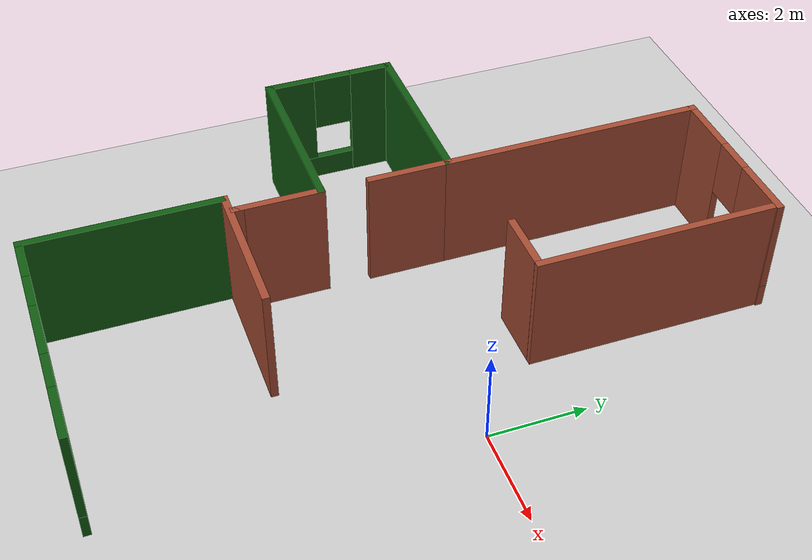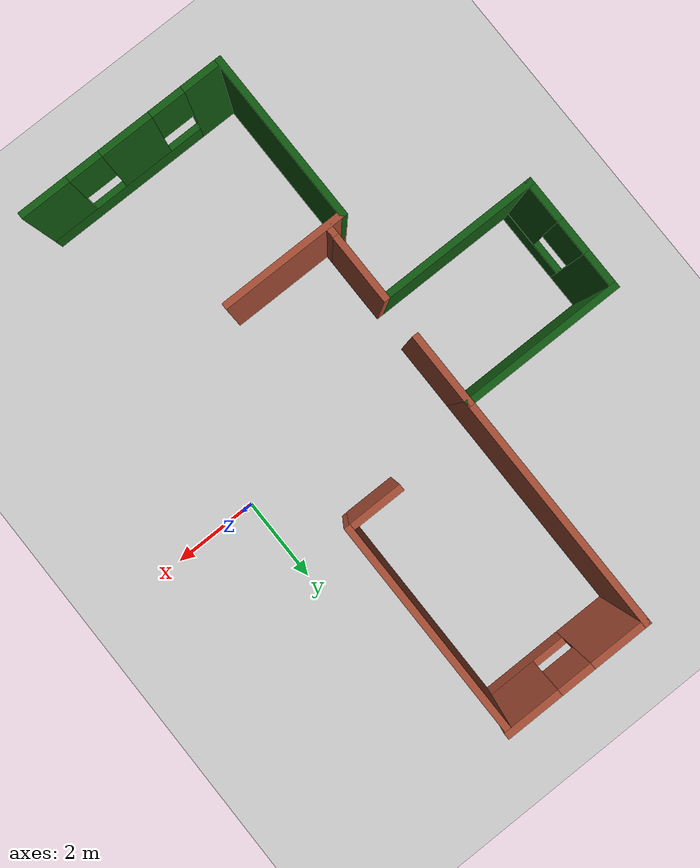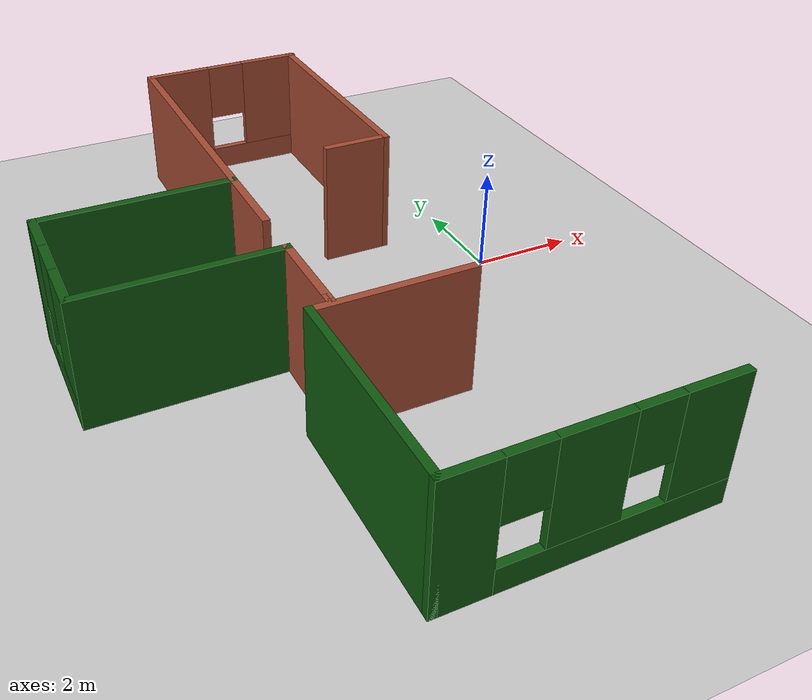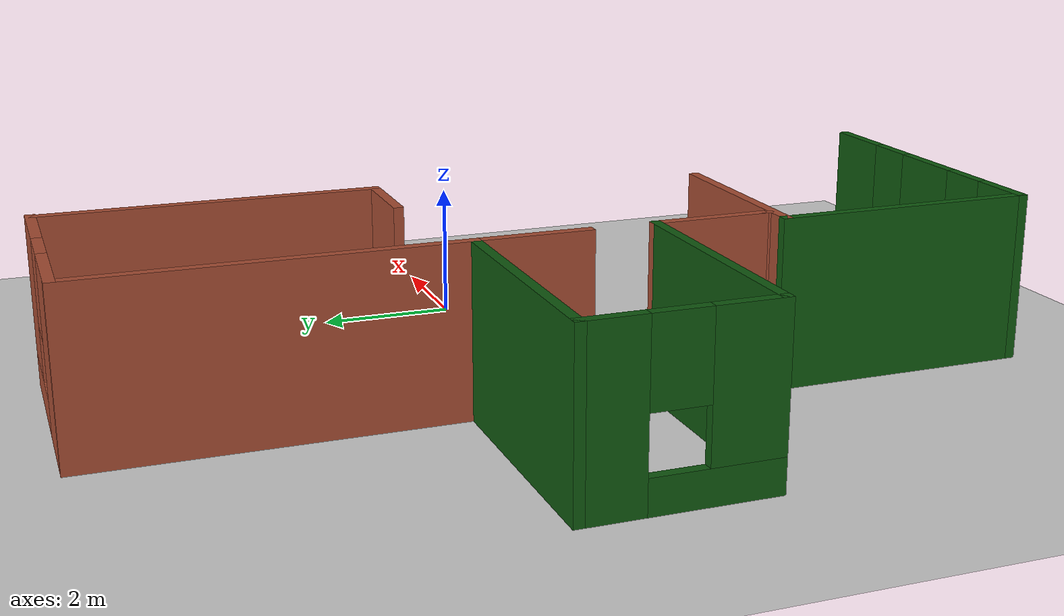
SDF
<sdf version="1.6">
 <world name="default">
  <model name="ground_plane">
   <static>1</static>
   <link name="link">
    <collision name="collision">
     <geometry><plane><normal>0 0 1</normal><size>100 100</size></plane></geometry>
     <surface>
      <contact><collide_bitmask>65535</collide_bitmask></contact>
      <friction><ode><mu>100</mu><mu2>50</mu2></ode></friction>
     </surface>
    </collision>
    <visual name="visual">
     <cast_shadows>0</cast_shadows>
     <geometry><plane><normal>0 0 1</normal><size>100 100</size></plane></geometry>
     <material>
      <script><uri>file://media/materials/scripts/gazebo.material</uri><name>Gazebo/Grey</name></script>
     </material>
    </visual>
   </link>
  </model>
  <model name="apartment">
   <link name="Wall_0">
    <pose>-2.91418 -6.79442 0 0 -0 0</pose>
    <visual name="Wall_0_Visual_0">
     <pose>-1.99956 0 1.25 0 -0 0</pose>
     <geometry><box><size>1.00087 0.15 2.5</size></box></geometry>
     <material>
      <script><uri>file://media/materials/scripts/gazebo.material</uri><name>Gazebo/Grey</name></script>
      <ambient>0.0627451 0.352941 0.0627451 1</ambient>
     </material>
     <meta><layer>0</layer></meta>
    </visual>
    <visual name="Wall_0_Visual_1">
     <pose>0.500436 0 0.25 0 -0 0</pose>
     <geometry><box><size>3.99913 0.15 0.5</size></box></geometry>
     <material>
      <script><uri>file://media/materials/scripts/gazebo.material</uri><name>Gazebo/Grey</name></script>
      <ambient>0.0627451 0.352941 0.0627451 1</ambient>
     </material>
     <meta><layer>0</layer></meta>
    </visual>
    <visual name="Wall_0_Visual_2">
     <pose>-0.080142 0 1.5 0 -0 0</pose>
     <geometry><box><size>1.23797 0.15 2</size></box></geometry>
     <material>
      <script><uri>file://media/materials/scripts/gazebo.material</uri><name>Gazebo/Grey</name></script>
      <ambient>0.0627451 0.352941 0.0627451 1</ambient>
     </material>
     <meta><layer>0</layer></meta>
    </visual>
    <visual name="Wall_0_Visual_3">
     <pose>1.91942 0 1.5 0 -0 0</pose>
     <geometry><box><size>1.16116 0.15 2</size></box></geometry>
     <material>
      <script><uri>file://media/materials/scripts/gazebo.material</uri><name>Gazebo/Grey</name></script>
      <ambient>0.0627451 0.352941 0.0627451 1</ambient>
     </material>
     <meta><layer>0</layer></meta>
    </visual>
    <visual name="Wall_0_Visual_4">
     <pose>-1.09913 0 1.9 0 -0 0</pose>
     <geometry><box><size>0.8 0.15 1.2</size></box></geometry>
     <material>
      <script><uri>file://media/materials/scripts/gazebo.material</uri><name>Gazebo/Grey</name></script>
      <ambient>0.0627451 0.352941 0.0627451 1</ambient>
     </material>
     <meta><layer>0</layer></meta>
    </visual>
    <visual name="Wall_0_Visual_5">
     <pose>0.938844 0 1.9 0 -0 0</pose>
     <geometry><box><size>0.8 0.15 1.2</size></box></geometry>
     <material>
      <script><uri>file://media/materials/scripts/gazebo.material</uri><name>Gazebo/Grey</name></script>
      <ambient>0.0627451 0.352941 0.0627451 1</ambient>
     </material>
     <meta><layer>0</layer></meta>
    </visual>
    <collision name="Wall_0_Collision_0">
     <pose>-1.99956 0 1.25 0 -0 0</pose>
     <geometry><box><size>1.00087 0.15 2.5</size></box></geometry>
     <surface>
      <friction>
       <ode><mu>1</mu><mu2>1</mu2><fdir1>0 0 0</fdir1><slip1>0</slip1><slip2>0</slip2></ode>
       <torsional>
        <coefficient>1</coefficient>
        <patch_radius>0</patch_radius>
        <surface_radius>0</surface_radius>
        <use_patch_radius>1</use_patch_radius>
        <ode><slip>0</slip></ode>
       </torsional>
      </friction>
      <bounce><restitution_coefficient>0</restitution_coefficient><threshold>1e+06</threshold></bounce>
      <contact>
       <collide_without_contact>0</collide_without_contact>
       <collide_without_contact_bitmask>1</collide_without_contact_bitmask>
       <collide_bitmask>1</collide_bitmask>
       <ode>
        <soft_cfm>0</soft_cfm>
        <soft_erp>0.2</soft_erp>
        <kp>1e+13</kp>
        <kd>1</kd>
        <max_vel>0.01</max_vel>
        <min_depth>0</min_depth>
       </ode>
       <bullet>
        <split_impulse>1</split_impulse>
        <split_impulse_penetration_threshold>-0.01</split_impulse_penetration_threshold>
        <soft_cfm>0</soft_cfm>
        <soft_erp>0.2</soft_erp>
        <kp>1e+13</kp>
        <kd>1</kd>
       </bullet>
      </contact>
     </surface>
    </collision>
    <collision name="Wall_0_Collision_1">
     <pose>0.500436 0 0.25 0 -0 0</pose>
     <geometry><box><size>3.99913 0.15 0.5</size></box></geometry>
     <surface>
      <friction>
       <ode><mu>1</mu><mu2>1</mu2><fdir1>0 0 0</fdir1><slip1>0</slip1><slip2>0</slip2></ode>
       <torsional>
        <coefficient>1</coefficient>
        <patch_radius>0</patch_radius>
        <surface_radius>0</surface_radius>
        <use_patch_radius>1</use_patch_radius>
        <ode><slip>0</slip></ode>
       </torsional>
      </friction>
      <bounce><restitution_coefficient>0</restitution_coefficient><threshold>1e+06</threshold></bounce>
      <contact>
       <collide_without_contact>0</collide_without_contact>
       <collide_without_contact_bitmask>1</collide_without_contact_bitmask>
       <collide_bitmask>1</collide_bitmask>
       <ode>
        <soft_cfm>0</soft_cfm>
        <soft_erp>0.2</soft_erp>
        <kp>1e+13</kp>
        <kd>1</kd>
        <max_vel>0.01</max_vel>
        <min_depth>0</min_depth>
       </ode>
       <bullet>
        <split_impulse>1</split_impulse>
        <split_impulse_penetration_threshold>-0.01</split_impulse_penetration_threshold>
        <soft_cfm>0</soft_cfm>
        <soft_erp>0.2</soft_erp>
        <kp>1e+13</kp>
        <kd>1</kd>
       </bullet>
      </contact>
     </surface>
    </collision>
    <collision name="Wall_0_Collision_2">
     <pose>-0.080142 0 1.5 0 -0 0</pose>
     <geometry><box><size>1.23797 0.15 2</size></box></geometry>
     <surface>
      <friction>
       <ode><mu>1</mu><mu2>1</mu2><fdir1>0 0 0</fdir1><slip1>0</slip1><slip2>0</slip2></ode>
       <torsional>
        <coefficient>1</coefficient>
        <patch_radius>0</patch_radius>
        <surface_radius>0</surface_radius>
        <use_patch_radius>1</use_patch_radius>
        <ode><slip>0</slip></ode>
       </torsional>
      </friction>
      <bounce><restitution_coefficient>0</restitution_coefficient><threshold>1e+06</threshold></bounce>
      <contact>
       <collide_without_contact>0</collide_without_contact>
       <collide_without_contact_bitmask>1</collide_without_contact_bitmask>
       <collide_bitmask>1</collide_bitmask>
       <ode>
        <soft_cfm>0</soft_cfm>
        <soft_erp>0.2</soft_erp>
        <kp>1e+13</kp>
        <kd>1</kd>
        <max_vel>0.01</max_vel>
        <min_depth>0</min_depth>
       </ode>
       <bullet>
        <split_impulse>1</split_impulse>
        <split_impulse_penetration_threshold>-0.01</split_impulse_penetration_threshold>
        <soft_cfm>0</soft_cfm>
        <soft_erp>0.2</soft_erp>
        <kp>1e+13</kp>
        <kd>1</kd>
       </bullet>
      </contact>
     </surface>
    </collision>
    <collision name="Wall_0_Collision_3">
     <pose>1.91942 0 1.5 0 -0 0</pose>
     <geometry><box><size>1.16116 0.15 2</size></box></geometry>
     <surface>
      <friction>
       <ode><mu>1</mu><mu2>1</mu2><fdir1>0 0 0</fdir1><slip1>0</slip1><slip2>0</slip2></ode>
       <torsional>
        <coefficient>1</coefficient>
        <patch_radius>0</patch_radius>
        <surface_radius>0</surface_radius>
        <use_patch_radius>1</use_patch_radius>
        <ode><slip>0</slip></ode>
       </torsional>
      </friction>
      <bounce><restitution_coefficient>0</restitution_coefficient><threshold>1e+06</threshold></bounce>
      <contact>
       <collide_without_contact>0</collide_without_contact>
       <collide_without_contact_bitmask>1</collide_without_contact_bitmask>
       <collide_bitmask>1</collide_bitmask>
       <ode>
        <soft_cfm>0</soft_cfm>
        <soft_erp>0.2</soft_erp>
        <kp>1e+13</kp>
        <kd>1</kd>
        <max_vel>0.01</max_vel>
        <min_depth>0</min_depth>
       </ode>
       <bullet>
        <split_impulse>1</split_impulse>
        <split_impulse_penetration_threshold>-0.01</split_impulse_penetration_threshold>
        <soft_cfm>0</soft_cfm>
        <soft_erp>0.2</soft_erp>
        <kp>1e+13</kp>
        <kd>1</kd>
       </bullet>
      </contact>
     </surface>
    </collision>
    <collision name="Wall_0_Collision_4">
     <pose>-1.09913 0 1.9 0 -0 0</pose>
     <geometry><box><size>0.8 0.15 1.2</size></box></geometry>
     <surface>
      <friction>
       <ode><mu>1</mu><mu2>1</mu2><fdir1>0 0 0</fdir1><slip1>0</slip1><slip2>0</slip2></ode>
       <torsional>
        <coefficient>1</coefficient>
        <patch_radius>0</patch_radius>
        <surface_radius>0</surface_radius>
        <use_patch_radius>1</use_patch_radius>
        <ode><slip>0</slip></ode>
       </torsional>
      </friction>
      <bounce><restitution_coefficient>0</restitution_coefficient><threshold>1e+06</threshold></bounce>
      <contact>
       <collide_without_contact>0</collide_without_contact>
       <collide_without_contact_bitmask>1</collide_without_contact_bitmask>
       <collide_bitmask>1</collide_bitmask>
       <ode>
        <soft_cfm>0</soft_cfm>
        <soft_erp>0.2</soft_erp>
        <kp>1e+13</kp>
        <kd>1</kd>
        <max_vel>0.01</max_vel>
        <min_depth>0</min_depth>
       </ode>
       <bullet>
        <split_impulse>1</split_impulse>
        <split_impulse_penetration_threshold>-0.01</split_impulse_penetration_threshold>
        <soft_cfm>0</soft_cfm>
        <soft_erp>0.2</soft_erp>
        <kp>1e+13</kp>
        <kd>1</kd>
       </bullet>
      </contact>
     </surface>
    </collision>
    <collision name="Wall_0_Collision_5">
     <pose>0.938844 0 1.9 0 -0 0</pose>
     <geometry><box><size>0.8 0.15 1.2</size></box></geometry>
     <surface>
      <friction>
       <ode><mu>1</mu><mu2>1</mu2><fdir1>0 0 0</fdir1><slip1>0</slip1><slip2>0</slip2></ode>
       <torsional>
        <coefficient>1</coefficient>
        <patch_radius>0</patch_radius>
        <surface_radius>0</surface_radius>
        <use_patch_radius>1</use_patch_radius>
        <ode><slip>0</slip></ode>
       </torsional>
      </friction>
      <bounce><restitution_coefficient>0</restitution_coefficient><threshold>1e+06</threshold></bounce>
      <contact>
       <collide_without_contact>0</collide_without_contact>
       <collide_without_contact_bitmask>1</collide_without_contact_bitmask>
       <collide_bitmask>1</collide_bitmask>
       <ode>
        <soft_cfm>0</soft_cfm>
        <soft_erp>0.2</soft_erp>
        <kp>1e+13</kp>
        <kd>1</kd>
        <max_vel>0.01</max_vel>
        <min_depth>0</min_depth>
       </ode>
       <bullet>
        <split_impulse>1</split_impulse>
        <split_impulse_penetration_threshold>-0.01</split_impulse_penetration_threshold>
        <soft_cfm>0</soft_cfm>
        <soft_erp>0.2</soft_erp>
        <kp>1e+13</kp>
        <kd>1</kd>
       </bullet>
      </contact>
     </surface>
    </collision>
   </link>
   <link name="Wall_20">
    <pose>-1.63918 4.33059 0 0 -0 1.5708</pose>
    <visual name="Wall_20_Visual">
     <pose>0 0 1.25 0 -0 0</pose>
     <geometry><box><size>5 0.15 2.5</size></box></geometry>
     <material>
      <script><uri>file://media/materials/scripts/gazebo.material</uri><name>Gazebo/Bricks</name></script>
      <ambient>1 1 1 1</ambient>
     </material>
     <meta><layer>0</layer></meta>
    </visual>
    <collision name="Wall_20_Collision">
     <pose>0 0 1.25 0 -0 0</pose>
     <geometry><box><size>5 0.15 2.5</size></box></geometry>
     <surface>
      <friction>
       <ode><mu>1</mu><mu2>1</mu2><fdir1>0 0 0</fdir1><slip1>0</slip1><slip2>0</slip2></ode>
       <torsional>
        <coefficient>1</coefficient>
        <patch_radius>0</patch_radius>
        <surface_radius>0</surface_radius>
        <use_patch_radius>1</use_patch_radius>
        <ode><slip>0</slip></ode>
       </torsional>
      </friction>
      <bounce><restitution_coefficient>0</restitution_coefficient><threshold>1e+06</threshold></bounce>
      <contact>
       <collide_without_contact>0</collide_without_contact>
       <collide_without_contact_bitmask>1</collide_without_contact_bitmask>
       <collide_bitmask>1</collide_bitmask>
       <ode>
        <soft_cfm>0</soft_cfm>
        <soft_erp>0.2</soft_erp>
        <kp>1e+13</kp>
        <kd>1</kd>
        <max_vel>0.01</max_vel>
        <min_depth>0</min_depth>
       </ode>
       <bullet>
        <split_impulse>1</split_impulse>
        <split_impulse_penetration_threshold>-0.01</split_impulse_penetration_threshold>
        <soft_cfm>0</soft_cfm>
        <soft_erp>0.2</soft_erp>
        <kp>1e+13</kp>
        <kd>1</kd>
       </bullet>
      </contact>
     </surface>
    </collision>
   </link>
   <link name="Wall_26">
    <pose>-8.56082 0.144415 0 0 0 -1.5708</pose>
    <visual name="Wall_26_Visual_0">
     <pose>-0.908752 0 1.25 0 -0 0</pose>
     <geometry><box><size>0.932496 0.15 2.5</size></box></geometry>
     <material>
      <script><uri>file://media/materials/scripts/gazebo.material</uri><name>Gazebo/Grey</name></script>
      <ambient>0.0627451 0.345098 0.0627451 1</ambient>
     </material>
     <meta><layer>0</layer></meta>
    </visual>
    <visual name="Wall_26_Visual_1">
     <pose>0.466248 0 0.25 0 -0 0</pose>
     <geometry><box><size>1.8175 0.15 0.5</size></box></geometry>
     <material>
      <script><uri>file://media/materials/scripts/gazebo.material</uri><name>Gazebo/Grey</name></script>
      <ambient>0.0627451 0.345098 0.0627451 1</ambient>
     </material>
     <meta><layer>0</layer></meta>
    </visual>
    <visual name="Wall_26_Visual_2">
     <pose>0.866248 0 1.5 0 -0 0</pose>
     <geometry><box><size>1.0175 0.15 2</size></box></geometry>
     <material>
      <script><uri>file://media/materials/scripts/gazebo.material</uri><name>Gazebo/Grey</name></script>
      <ambient>0.0627451 0.345098 0.0627451 1</ambient>
     </material>
     <meta><layer>0</layer></meta>
    </visual>
    <visual name="Wall_26_Visual_3">
     <pose>-0.042504 0 1.9 0 -0 0</pose>
     <geometry><box><size>0.8 0.15 1.2</size></box></geometry>
     <material>
      <script><uri>file://media/materials/scripts/gazebo.material</uri><name>Gazebo/Grey</name></script>
      <ambient>0.0627451 0.345098 0.0627451 1</ambient>
     </material>
     <meta><layer>0</layer></meta>
    </visual>
    <collision name="Wall_26_Collision_0">
     <pose>-0.908752 0 1.25 0 -0 0</pose>
     <geometry><box><size>0.932496 0.15 2.5</size></box></geometry>
     <surface>
      <friction>
       <ode><mu>1</mu><mu2>1</mu2><fdir1>0 0 0</fdir1><slip1>0</slip1><slip2>0</slip2></ode>
       <torsional>
        <coefficient>1</coefficient>
        <patch_radius>0</patch_radius>
        <surface_radius>0</surface_radius>
        <use_patch_radius>1</use_patch_radius>
        <ode><slip>0</slip></ode>
       </torsional>
      </friction>
      <bounce><restitution_coefficient>0</restitution_coefficient><threshold>1e+06</threshold></bounce>
      <contact>
       <collide_without_contact>0</collide_without_contact>
       <collide_without_contact_bitmask>1</collide_without_contact_bitmask>
       <collide_bitmask>1</collide_bitmask>
       <ode>
        <soft_cfm>0</soft_cfm>
        <soft_erp>0.2</soft_erp>
        <kp>1e+13</kp>
        <kd>1</kd>
        <max_vel>0.01</max_vel>
        <min_depth>0</min_depth>
       </ode>
       <bullet>
        <split_impulse>1</split_impulse>
        <split_impulse_penetration_threshold>-0.01</split_impulse_penetration_threshold>
        <soft_cfm>0</soft_cfm>
        <soft_erp>0.2</soft_erp>
        <kp>1e+13</kp>
        <kd>1</kd>
       </bullet>
      </contact>
     </surface>
    </collision>
    <collision name="Wall_26_Collision_1">
     <pose>0.466248 0 0.25 0 -0 0</pose>
     <geometry><box><size>1.8175 0.15 0.5</size></box></geometry>
     <surface>
      <friction>
       <ode><mu>1</mu><mu2>1</mu2><fdir1>0 0 0</fdir1><slip1>0</slip1><slip2>0</slip2></ode>
       <torsional>
        <coefficient>1</coefficient>
        <patch_radius>0</patch_radius>
        <surface_radius>0</surface_radius>
        <use_patch_radius>1</use_patch_radius>
        <ode><slip>0</slip></ode>
       </torsional>
      </friction>
      <bounce><restitution_coefficient>0</restitution_coefficient><threshold>1e+06</threshold></bounce>
      <contact>
       <collide_without_contact>0</collide_without_contact>
       <collide_without_contact_bitmask>1</collide_without_contact_bitmask>
       <collide_bitmask>1</collide_bitmask>
       <ode>
        <soft_cfm>0</soft_cfm>
        <soft_erp>0.2</soft_erp>
        <kp>1e+13</kp>
        <kd>1</kd>
        <max_vel>0.01</max_vel>
        <min_depth>0</min_depth>
       </ode>
       <bullet>
        <split_impulse>1</split_impulse>
        <split_impulse_penetration_threshold>-0.01</split_impulse_penetration_threshold>
        <soft_cfm>0</soft_cfm>
        <soft_erp>0.2</soft_erp>
        <kp>1e+13</kp>
        <kd>1</kd>
       </bullet>
      </contact>
     </surface>
    </collision>
    <collision name="Wall_26_Collision_2">
     <pose>0.866248 0 1.5 0 -0 0</pose>
     <geometry><box><size>1.0175 0.15 2</size></box></geometry>
     <surface>
      <friction>
       <ode><mu>1</mu><mu2>1</mu2><fdir1>0 0 0</fdir1><slip1>0</slip1><slip2>0</slip2></ode>
       <torsional>
        <coefficient>1</coefficient>
        <patch_radius>0</patch_radius>
        <surface_radius>0</surface_radius>
        <use_patch_radius>1</use_patch_radius>
        <ode><slip>0</slip></ode>
       </torsional>
      </friction>
      <bounce><restitution_coefficient>0</restitution_coefficient><threshold>1e+06</threshold></bounce>
      <contact>
       <collide_without_contact>0</collide_without_contact>
       <collide_without_contact_bitmask>1</collide_without_contact_bitmask>
       <collide_bitmask>1</collide_bitmask>
       <ode>
        <soft_cfm>0</soft_cfm>
        <soft_erp>0.2</soft_erp>
        <kp>1e+13</kp>
        <kd>1</kd>
        <max_vel>0.01</max_vel>
        <min_depth>0</min_depth>
       </ode>
       <bullet>
        <split_impulse>1</split_impulse>
        <split_impulse_penetration_threshold>-0.01</split_impulse_penetration_threshold>
        <soft_cfm>0</soft_cfm>
        <soft_erp>0.2</soft_erp>
        <kp>1e+13</kp>
        <kd>1</kd>
       </bullet>
      </contact>
     </surface>
    </collision>
    <collision name="Wall_26_Collision_3">
     <pose>-0.042504 0 1.9 0 -0 0</pose>
     <geometry><box><size>0.8 0.15 1.2</size></box></geometry>
     <surface>
      <friction>
       <ode><mu>1</mu><mu2>1</mu2><fdir1>0 0 0</fdir1><slip1>0</slip1><slip2>0</slip2></ode>
       <torsional>
        <coefficient>1</coefficient>
        <patch_radius>0</patch_radius>
        <surface_radius>0</surface_radius>
        <use_patch_radius>1</use_patch_radius>
        <ode><slip>0</slip></ode>
       </torsional>
      </friction>
      <bounce><restitution_coefficient>0</restitution_coefficient><threshold>1e+06</threshold></bounce>
      <contact>
       <collide_without_contact>0</collide_without_contact>
       <collide_without_contact_bitmask>1</collide_without_contact_bitmask>
       <collide_bitmask>1</collide_bitmask>
       <ode>
        <soft_cfm>0</soft_cfm>
        <soft_erp>0.2</soft_erp>
        <kp>1e+13</kp>
        <kd>1</kd>
        <max_vel>0.01</max_vel>
        <min_depth>0</min_depth>
       </ode>
       <bullet>
        <split_impulse>1</split_impulse>
        <split_impulse_penetration_threshold>-0.01</split_impulse_penetration_threshold>
        <soft_cfm>0</soft_cfm>
        <soft_erp>0.2</soft_erp>
        <kp>1e+13</kp>
        <kd>1</kd>
       </bullet>
      </contact>
     </surface>
    </collision>
   </link>
   <link name="Wall_27">
    <pose>-6.76082 -1.15559 0 0 -0 0</pose>
    <visual name="Wall_27_Visual">
     <pose>0 0 1.25 0 -0 0</pose>
     <geometry><box><size>3.75 0.15 2.5</size></box></geometry>
     <material>
      <script><uri>file://media/materials/scripts/gazebo.material</uri><name>Gazebo/Grey</name></script>
      <ambient>0.0627451 0.345098 0.0627451 1</ambient>
     </material>
     <meta><layer>0</layer></meta>
    </visual>
    <collision name="Wall_27_Collision">
     <pose>0 0 1.25 0 -0 0</pose>
     <geometry><box><size>3.75 0.15 2.5</size></box></geometry>
     <surface>
      <friction>
       <ode><mu>1</mu><mu2>1</mu2><fdir1>0 0 0</fdir1><slip1>0</slip1><slip2>0</slip2></ode>
       <torsional>
        <coefficient>1</coefficient>
        <patch_radius>0</patch_radius>
        <surface_radius>0</surface_radius>
        <use_patch_radius>1</use_patch_radius>
        <ode><slip>0</slip></ode>
       </torsional>
      </friction>
      <bounce><restitution_coefficient>0</restitution_coefficient><threshold>1e+06</threshold></bounce>
      <contact>
       <collide_without_contact>0</collide_without_contact>
       <collide_without_contact_bitmask>1</collide_without_contact_bitmask>
       <collide_bitmask>1</collide_bitmask>
       <ode>
        <soft_cfm>0</soft_cfm>
        <soft_erp>0.2</soft_erp>
        <kp>1e+13</kp>
        <kd>1</kd>
        <max_vel>0.01</max_vel>
        <min_depth>0</min_depth>
       </ode>
       <bullet>
        <split_impulse>1</split_impulse>
        <split_impulse_penetration_threshold>-0.01</split_impulse_penetration_threshold>
        <soft_cfm>0</soft_cfm>
        <soft_erp>0.2</soft_erp>
        <kp>1e+13</kp>
        <kd>1</kd>
       </bullet>
      </contact>
     </surface>
    </collision>
   </link>
   <link name="Wall_28">
    <pose>-4.96082 -1.95558 0 0 0 -1.5708</pose>
    <visual name="Wall_28_Visual">
     <pose>0 0 1.25 0 -0 0</pose>
     <geometry><box><size>1.75 0.15 2.5</size></box></geometry>
     <material>
      <script><uri>file://media/materials/scripts/gazebo.material</uri><name>Gazebo/Bricks</name></script>
      <ambient>1 1 1 1</ambient>
     </material>
     <meta><layer>0</layer></meta>
    </visual>
    <collision name="Wall_28_Collision">
     <pose>0 0 1.25 0 -0 0</pose>
     <geometry><box><size>1.75 0.15 2.5</size></box></geometry>
     <surface>
      <friction>
       <ode><mu>1</mu><mu2>1</mu2><fdir1>0 0 0</fdir1><slip1>0</slip1><slip2>0</slip2></ode>
       <torsional>
        <coefficient>1</coefficient>
        <patch_radius>0</patch_radius>
        <surface_radius>0</surface_radius>
        <use_patch_radius>1</use_patch_radius>
        <ode><slip>0</slip></ode>
       </torsional>
      </friction>
      <bounce><restitution_coefficient>0</restitution_coefficient><threshold>1e+06</threshold></bounce>
      <contact>
       <collide_without_contact>0</collide_without_contact>
       <collide_without_contact_bitmask>1</collide_without_contact_bitmask>
       <collide_bitmask>1</collide_bitmask>
       <ode>
        <soft_cfm>0</soft_cfm>
        <soft_erp>0.2</soft_erp>
        <kp>1e+13</kp>
        <kd>1</kd>
        <max_vel>0.01</max_vel>
        <min_depth>0</min_depth>
       </ode>
       <bullet>
        <split_impulse>1</split_impulse>
        <split_impulse_penetration_threshold>-0.01</split_impulse_penetration_threshold>
        <soft_cfm>0</soft_cfm>
        <soft_erp>0.2</soft_erp>
        <kp>1e+13</kp>
        <kd>1</kd>
       </bullet>
      </contact>
     </surface>
    </collision>
   </link>
   <link name="Wall_30">
    <pose>-4.96082 -2.80559 0 0 0 -1.5708</pose>
    <visual name="Wall_30_Visual">
     <pose>0 0 1.25 0 -0 0</pose>
     <geometry><box><size>0.25 0.15 2.5</size></box></geometry>
     <material>
      <script><uri>file://media/materials/scripts/gazebo.material</uri><name>Gazebo/Bricks</name></script>
      <ambient>1 1 1 1</ambient>
     </material>
     <meta><layer>0</layer></meta>
    </visual>
    <collision name="Wall_30_Collision">
     <pose>0 0 1.25 0 -0 0</pose>
     <geometry><box><size>0.25 0.15 2.5</size></box></geometry>
     <surface>
      <friction>
       <ode><mu>1</mu><mu2>1</mu2><fdir1>0 0 0</fdir1><slip1>0</slip1><slip2>0</slip2></ode>
       <torsional>
        <coefficient>1</coefficient>
        <patch_radius>0</patch_radius>
        <surface_radius>0</surface_radius>
        <use_patch_radius>1</use_patch_radius>
        <ode><slip>0</slip></ode>
       </torsional>
      </friction>
      <bounce><restitution_coefficient>0</restitution_coefficient><threshold>1e+06</threshold></bounce>
      <contact>
       <collide_without_contact>0</collide_without_contact>
       <collide_without_contact_bitmask>1</collide_without_contact_bitmask>
       <collide_bitmask>1</collide_bitmask>
       <ode>
        <soft_cfm>0</soft_cfm>
        <soft_erp>0.2</soft_erp>
        <kp>1e+13</kp>
        <kd>1</kd>
        <max_vel>0.01</max_vel>
        <min_depth>0</min_depth>
       </ode>
       <bullet>
        <split_impulse>1</split_impulse>
        <split_impulse_penetration_threshold>-0.01</split_impulse_penetration_threshold>
        <soft_cfm>0</soft_cfm>
        <soft_erp>0.2</soft_erp>
        <kp>1e+13</kp>
        <kd>1</kd>
       </bullet>
      </contact>
     </surface>
    </collision>
   </link>
   <link name="Wall_32">
    <pose>-6.76082 1.44442 0 0 -0 0</pose>
    <visual name="Wall_32_Visual">
     <pose>0 0 1.25 0 -0 0</pose>
     <geometry><box><size>3.75 0.15 2.5</size></box></geometry>
     <material>
      <script><uri>file://media/materials/scripts/gazebo.material</uri><name>Gazebo/Grey</name></script>
      <ambient>0.0627451 0.345098 0.0627451 1</ambient>
     </material>
     <meta><layer>0</layer></meta>
    </visual>
    <collision name="Wall_32_Collision">
     <pose>0 0 1.25 0 -0 0</pose>
     <geometry><box><size>3.75 0.15 2.5</size></box></geometry>
     <surface>
      <friction>
       <ode><mu>1</mu><mu2>1</mu2><fdir1>0 0 0</fdir1><slip1>0</slip1><slip2>0</slip2></ode>
       <torsional>
        <coefficient>1</coefficient>
        <patch_radius>0</patch_radius>
        <surface_radius>0</surface_radius>
        <use_patch_radius>1</use_patch_radius>
        <ode><slip>0</slip></ode>
       </torsional>
      </friction>
      <bounce><restitution_coefficient>0</restitution_coefficient><threshold>1e+06</threshold></bounce>
      <contact>
       <collide_without_contact>0</collide_without_contact>
       <collide_without_contact_bitmask>1</collide_without_contact_bitmask>
       <collide_bitmask>1</collide_bitmask>
       <ode>
        <soft_cfm>0</soft_cfm>
        <soft_erp>0.2</soft_erp>
        <kp>1e+13</kp>
        <kd>1</kd>
        <max_vel>0.01</max_vel>
        <min_depth>0</min_depth>
       </ode>
       <bullet>
        <split_impulse>1</split_impulse>
        <split_impulse_penetration_threshold>-0.01</split_impulse_penetration_threshold>
        <soft_cfm>0</soft_cfm>
        <soft_erp>0.2</soft_erp>
        <kp>1e+13</kp>
        <kd>1</kd>
       </bullet>
      </contact>
     </surface>
    </collision>
   </link>
   <link name="Wall_36">
    <pose>-3.28582 6.79441 0 0 -0 0</pose>
    <visual name="Wall_36_Visual_1">
     <pose>0.692709 0 0.25 0 -0 0</pose>
     <geometry><box><size>2.11458 0.15 0.5</size></box></geometry>
     <material>
      <script><uri>file://media/materials/scripts/gazebo.material</uri><name>Gazebo/Bricks</name></script>
      <ambient>1 1 1 1</ambient>
     </material>
     <meta><layer>0</layer></meta>
    </visual>
    <visual name="Wall_36_Visual_0">
     <pose>-1.05729 0 1.25 0 -0 0</pose>
     <geometry><box><size>1.38542 0.15 2.5</size></box></geometry>
     <material>
      <script><uri>file://media/materials/scripts/gazebo.material</uri><name>Gazebo/Bricks</name></script>
      <ambient>1 1 1 1</ambient>
     </material>
     <meta><layer>0</layer></meta>
    </visual>
    <visual name="Wall_36_Visual_2">
     <pose>1.09271 0 1.5 0 -0 0</pose>
     <geometry><box><size>1.31458 0.15 2</size></box></geometry>
     <material>
      <script><uri>file://media/materials/scripts/gazebo.material</uri><name>Gazebo/Bricks</name></script>
      <ambient>1 1 1 1</ambient>
     </material>
     <meta><layer>0</layer></meta>
    </visual>
    <visual name="Wall_36_Visual_3">
     <pose>0.035419 0 1.9 0 -0 0</pose>
     <geometry><box><size>0.8 0.15 1.2</size></box></geometry>
     <material>
      <script><uri>file://media/materials/scripts/gazebo.material</uri><name>Gazebo/Bricks</name></script>
      <ambient>1 1 1 1</ambient>
     </material>
     <meta><layer>0</layer></meta>
    </visual>
    <collision name="Wall_36_Collision_0">
     <pose>-1.05729 0 1.25 0 -0 0</pose>
     <geometry><box><size>1.38542 0.15 2.5</size></box></geometry>
     <surface>
      <friction>
       <ode><mu>1</mu><mu2>1</mu2><fdir1>0 0 0</fdir1><slip1>0</slip1><slip2>0</slip2></ode>
       <torsional>
        <coefficient>1</coefficient>
        <patch_radius>0</patch_radius>
        <surface_radius>0</surface_radius>
        <use_patch_radius>1</use_patch_radius>
        <ode><slip>0</slip></ode>
       </torsional>
      </friction>
      <bounce><restitution_coefficient>0</restitution_coefficient><threshold>1e+06</threshold></bounce>
      <contact>
       <collide_without_contact>0</collide_without_contact>
       <collide_without_contact_bitmask>1</collide_without_contact_bitmask>
       <collide_bitmask>1</collide_bitmask>
       <ode>
        <soft_cfm>0</soft_cfm>
        <soft_erp>0.2</soft_erp>
        <kp>1e+13</kp>
        <kd>1</kd>
        <max_vel>0.01</max_vel>
        <min_depth>0</min_depth>
       </ode>
       <bullet>
        <split_impulse>1</split_impulse>
        <split_impulse_penetration_threshold>-0.01</split_impulse_penetration_threshold>
        <soft_cfm>0</soft_cfm>
        <soft_erp>0.2</soft_erp>
        <kp>1e+13</kp>
        <kd>1</kd>
       </bullet>
      </contact>
     </surface>
    </collision>
    <collision name="Wall_36_Collision_1">
     <pose>0.692709 0 0.25 0 -0 0</pose>
     <geometry><box><size>2.11458 0.15 0.5</size></box></geometry>
     <surface>
      <friction>
       <ode><mu>1</mu><mu2>1</mu2><fdir1>0 0 0</fdir1><slip1>0</slip1><slip2>0</slip2></ode>
       <torsional>
        <coefficient>1</coefficient>
        <patch_radius>0</patch_radius>
        <surface_radius>0</surface_radius>
        <use_patch_radius>1</use_patch_radius>
        <ode><slip>0</slip></ode>
       </torsional>
      </friction>
      <bounce><restitution_coefficient>0</restitution_coefficient><threshold>1e+06</threshold></bounce>
      <contact>
       <collide_without_contact>0</collide_without_contact>
       <collide_without_contact_bitmask>1</collide_without_contact_bitmask>
       <collide_bitmask>1</collide_bitmask>
       <ode>
        <soft_cfm>0</soft_cfm>
        <soft_erp>0.2</soft_erp>
        <kp>1e+13</kp>
        <kd>1</kd>
        <max_vel>0.01</max_vel>
        <min_depth>0</min_depth>
       </ode>
       <bullet>
        <split_impulse>1</split_impulse>
        <split_impulse_penetration_threshold>-0.01</split_impulse_penetration_threshold>
        <soft_cfm>0</soft_cfm>
        <soft_erp>0.2</soft_erp>
        <kp>1e+13</kp>
        <kd>1</kd>
       </bullet>
      </contact>
     </surface>
    </collision>
    <collision name="Wall_36_Collision_2">
     <pose>1.09271 0 1.5 0 -0 0</pose>
     <geometry><box><size>1.31458 0.15 2</size></box></geometry>
     <surface>
      <friction>
       <ode><mu>1</mu><mu2>1</mu2><fdir1>0 0 0</fdir1><slip1>0</slip1><slip2>0</slip2></ode>
       <torsional>
        <coefficient>1</coefficient>
        <patch_radius>0</patch_radius>
        <surface_radius>0</surface_radius>
        <use_patch_radius>1</use_patch_radius>
        <ode><slip>0</slip></ode>
       </torsional>
      </friction>
      <bounce><restitution_coefficient>0</restitution_coefficient><threshold>1e+06</threshold></bounce>
      <contact>
       <collide_without_contact>0</collide_without_contact>
       <collide_without_contact_bitmask>1</collide_without_contact_bitmask>
       <collide_bitmask>1</collide_bitmask>
       <ode>
        <soft_cfm>0</soft_cfm>
        <soft_erp>0.2</soft_erp>
        <kp>1e+13</kp>
        <kd>1</kd>
        <max_vel>0.01</max_vel>
        <min_depth>0</min_depth>
       </ode>
       <bullet>
        <split_impulse>1</split_impulse>
        <split_impulse_penetration_threshold>-0.01</split_impulse_penetration_threshold>
        <soft_cfm>0</soft_cfm>
        <soft_erp>0.2</soft_erp>
        <kp>1e+13</kp>
        <kd>1</kd>
       </bullet>
      </contact>
     </surface>
    </collision>
    <collision name="Wall_36_Collision_3">
     <pose>0.035419 0 1.9 0 -0 0</pose>
     <geometry><box><size>0.8 0.15 1.2</size></box></geometry>
     <surface>
      <friction>
       <ode><mu>1</mu><mu2>1</mu2><fdir1>0 0 0</fdir1><slip1>0</slip1><slip2>0</slip2></ode>
       <torsional>
        <coefficient>1</coefficient>
        <patch_radius>0</patch_radius>
        <surface_radius>0</surface_radius>
        <use_patch_radius>1</use_patch_radius>
        <ode><slip>0</slip></ode>
       </torsional>
      </friction>
      <bounce><restitution_coefficient>0</restitution_coefficient><threshold>1e+06</threshold></bounce>
      <contact>
       <collide_without_contact>0</collide_without_contact>
       <collide_without_contact_bitmask>1</collide_without_contact_bitmask>
       <collide_bitmask>1</collide_bitmask>
       <ode>
        <soft_cfm>0</soft_cfm>
        <soft_erp>0.2</soft_erp>
        <kp>1e+13</kp>
        <kd>1</kd>
        <max_vel>0.01</max_vel>
        <min_depth>0</min_depth>
       </ode>
       <bullet>
        <split_impulse>1</split_impulse>
        <split_impulse_penetration_threshold>-0.01</split_impulse_penetration_threshold>
        <soft_cfm>0</soft_cfm>
        <soft_erp>0.2</soft_erp>
        <kp>1e+13</kp>
        <kd>1</kd>
       </bullet>
      </contact>
     </surface>
    </collision>
   </link>
   <link name="Wall_39">
    <pose>-4.96082 0.644415 0 0 0 -1.5708</pose>
    <visual name="Wall_39_Visual">
     <pose>0 0 1.25 0 -0 0</pose>
     <geometry><box><size>1.75 0.15 2.5</size></box></geometry>
     <material>
      <script><uri>file://media/materials/scripts/gazebo.material</uri><name>Gazebo/Bricks</name></script>
      <ambient>1 1 1 1</ambient>
     </material>
     <meta><layer>0</layer></meta>
    </visual>
    <collision name="Wall_39_Collision">
     <pose>0 0 1.25 0 -0 0</pose>
     <geometry><box><size>1.75 0.15 2.5</size></box></geometry>
     <surface>
      <friction>
       <ode><mu>1</mu><mu2>1</mu2><fdir1>0 0 0</fdir1><slip1>0</slip1><slip2>0</slip2></ode>
       <torsional>
        <coefficient>1</coefficient>
        <patch_radius>0</patch_radius>
        <surface_radius>0</surface_radius>
        <use_patch_radius>1</use_patch_radius>
        <ode><slip>0</slip></ode>
       </torsional>
      </friction>
      <bounce><restitution_coefficient>0</restitution_coefficient><threshold>1e+06</threshold></bounce>
      <contact>
       <collide_without_contact>0</collide_without_contact>
       <collide_without_contact_bitmask>1</collide_without_contact_bitmask>
       <collide_bitmask>1</collide_bitmask>
       <ode>
        <soft_cfm>0</soft_cfm>
        <soft_erp>0.2</soft_erp>
        <kp>1e+13</kp>
        <kd>1</kd>
        <max_vel>0.01</max_vel>
        <min_depth>0</min_depth>
       </ode>
       <bullet>
        <split_impulse>1</split_impulse>
        <split_impulse_penetration_threshold>-0.01</split_impulse_penetration_threshold>
        <soft_cfm>0</soft_cfm>
        <soft_erp>0.2</soft_erp>
        <kp>1e+13</kp>
        <kd>1</kd>
       </bullet>
      </contact>
     </surface>
    </collision>
   </link>
   <link name="Wall_41">
    <pose>-4.96082 4.11942 0 0 -0 1.5708</pose>
    <visual name="Wall_41_Visual">
     <pose>0 0 1.25 0 -0 0</pose>
     <geometry><box><size>5.5 0.15 2.5</size></box></geometry>
     <material>
      <script><uri>file://media/materials/scripts/gazebo.material</uri><name>Gazebo/Bricks</name></script>
      <ambient>1 1 1 1</ambient>
     </material>
     <meta><layer>0</layer></meta>
    </visual>
    <collision name="Wall_41_Collision">
     <pose>0 0 1.25 0 -0 0</pose>
     <geometry><box><size>5.5 0.15 2.5</size></box></geometry>
     <surface>
      <friction>
       <ode><mu>1</mu><mu2>1</mu2><fdir1>0 0 0</fdir1><slip1>0</slip1><slip2>0</slip2></ode>
       <torsional>
        <coefficient>1</coefficient>
        <patch_radius>0</patch_radius>
        <surface_radius>0</surface_radius>
        <use_patch_radius>1</use_patch_radius>
        <ode><slip>0</slip></ode>
       </torsional>
      </friction>
      <bounce><restitution_coefficient>0</restitution_coefficient><threshold>1e+06</threshold></bounce>
      <contact>
       <collide_without_contact>0</collide_without_contact>
       <collide_without_contact_bitmask>1</collide_without_contact_bitmask>
       <collide_bitmask>1</collide_bitmask>
       <ode>
        <soft_cfm>0</soft_cfm>
        <soft_erp>0.2</soft_erp>
        <kp>1e+13</kp>
        <kd>1</kd>
        <max_vel>0.01</max_vel>
        <min_depth>0</min_depth>
       </ode>
       <bullet>
        <split_impulse>1</split_impulse>
        <split_impulse_penetration_threshold>-0.01</split_impulse_penetration_threshold>
        <soft_cfm>0</soft_cfm>
        <soft_erp>0.2</soft_erp>
        <kp>1e+13</kp>
        <kd>1</kd>
       </bullet>
      </contact>
     </surface>
    </collision>
   </link>
   <link name="Wall_43">
    <pose>-2.31056 1.9022 0 0 -0 3.14159</pose>
    <inertial>
     <inertia><ixx>0</ixx><ixy>0</ixy><ixz>0</ixz><iyy>0</iyy><iyz>0</iyz><izz>0</izz></inertia>
     <mass>0</mass>
    </inertial>
    <visual name="Wall_43_Visual">
     <pose>0 0 1.25 0 -0 0</pose>
     <geometry><box><size>1.24418 0.15 2.5</size></box></geometry>
     <material>
      <script><uri>file://media/materials/scripts/gazebo.material</uri><name>Gazebo/Bricks</name></script>
      <ambient>1 1 1 1</ambient>
     </material>
     <meta><layer>0</layer></meta>
    </visual>
    <collision name="Wall_43_Collision">
     <pose>0 0 1.25 0 -0 0</pose>
     <geometry><box><size>1.24418 0.15 2.5</size></box></geometry>
     <surface>
      <friction>
       <ode><mu>1</mu><mu2>1</mu2><fdir1>0 0 0</fdir1><slip1>0</slip1><slip2>0</slip2></ode>
       <torsional>
        <coefficient>1</coefficient>
        <patch_radius>0</patch_radius>
        <surface_radius>0</surface_radius>
        <use_patch_radius>1</use_patch_radius>
        <ode><slip>0</slip></ode>
       </torsional>
      </friction>
      <bounce><restitution_coefficient>0</restitution_coefficient><threshold>1e+06</threshold></bounce>
      <contact>
       <collide_without_contact>0</collide_without_contact>
       <collide_without_contact_bitmask>1</collide_without_contact_bitmask>
       <collide_bitmask>1</collide_bitmask>
       <ode>
        <soft_cfm>0</soft_cfm>
        <soft_erp>0.2</soft_erp>
        <kp>1e+13</kp>
        <kd>1</kd>
        <max_vel>0.01</max_vel>
        <min_depth>0</min_depth>
       </ode>
       <bullet>
        <split_impulse>1</split_impulse>
        <split_impulse_penetration_threshold>-0.01</split_impulse_penetration_threshold>
        <soft_cfm>0</soft_cfm>
        <soft_erp>0.2</soft_erp>
        <kp>1e+13</kp>
        <kd>1</kd>
       </bullet>
      </contact>
     </surface>
    </collision>
   </link>
   <link name="Wall_8">
    <pose>-5.33918 -4.86942 0 0 -0 1.5708</pose>
    <visual name="Wall_8_Visual">
     <pose>0 0 1.25 0 -0 0</pose>
     <geometry><box><size>4 0.15 2.5</size></box></geometry>
     <material>
      <script><uri>file://media/materials/scripts/gazebo.material</uri><name>Gazebo/Grey</name></script>
      <ambient>0.0627451 0.352941 0.0627451 1</ambient>
     </material>
     <meta><layer>0</layer></meta>
    </visual>
    <collision name="Wall_8_Collision">
     <pose>0 0 1.25 0 -0 0</pose>
     <geometry><box><size>4 0.15 2.5</size></box></geometry>
     <surface>
      <friction>
       <ode><mu>1</mu><mu2>1</mu2><fdir1>0 0 0</fdir1><slip1>0</slip1><slip2>0</slip2></ode>
       <torsional>
        <coefficient>1</coefficient>
        <patch_radius>0</patch_radius>
        <surface_radius>0</surface_radius>
        <use_patch_radius>1</use_patch_radius>
        <ode><slip>0</slip></ode>
       </torsional>
      </friction>
      <bounce><restitution_coefficient>0</restitution_coefficient><threshold>1e+06</threshold></bounce>
      <contact>
       <collide_without_contact>0</collide_without_contact>
       <collide_without_contact_bitmask>1</collide_without_contact_bitmask>
       <collide_bitmask>1</collide_bitmask>
       <ode>
        <soft_cfm>0</soft_cfm>
        <soft_erp>0.2</soft_erp>
        <kp>1e+13</kp>
        <kd>1</kd>
        <max_vel>0.01</max_vel>
        <min_depth>0</min_depth>
       </ode>
       <bullet>
        <split_impulse>1</split_impulse>
        <split_impulse_penetration_threshold>-0.01</split_impulse_penetration_threshold>
        <soft_cfm>0</soft_cfm>
        <soft_erp>0.2</soft_erp>
        <kp>1e+13</kp>
        <kd>1</kd>
       </bullet>
      </contact>
     </surface>
    </collision>
   </link>
   <link name="Wall_9">
    <pose>-3.91418 -2.94442 0 0 -0 0</pose>
    <visual name="Wall_9_Visual">
     <pose>0 0 1.25 0 -0 0</pose>
     <geometry><box><size>3 0.15 2.5</size></box></geometry>
     <material>
      <script><uri>file://media/materials/scripts/gazebo.material</uri><name>Gazebo/Bricks</name></script>
      <ambient>1 1 1 1</ambient>
     </material>
     <meta><layer>0</layer></meta>
    </visual>
    <collision name="Wall_9_Collision">
     <pose>0 0 1.25 0 -0 0</pose>
     <geometry><box><size>3 0.15 2.5</size></box></geometry>
     <surface>
      <friction>
       <ode><mu>1</mu><mu2>1</mu2><fdir1>0 0 0</fdir1><slip1>0</slip1><slip2>0</slip2></ode>
       <torsional>
        <coefficient>1</coefficient>
        <patch_radius>0</patch_radius>
        <surface_radius>0</surface_radius>
        <use_patch_radius>1</use_patch_radius>
        <ode><slip>0</slip></ode>
       </torsional>
      </friction>
      <bounce><restitution_coefficient>0</restitution_coefficient><threshold>1e+06</threshold></bounce>
      <contact>
       <collide_without_contact>0</collide_without_contact>
       <collide_without_contact_bitmask>1</collide_without_contact_bitmask>
       <collide_bitmask>1</collide_bitmask>
       <ode>
        <soft_cfm>0</soft_cfm>
        <soft_erp>0.2</soft_erp>
        <kp>1e+13</kp>
        <kd>1</kd>
        <max_vel>0.01</max_vel>
        <min_depth>0</min_depth>
       </ode>
       <bullet>
        <split_impulse>1</split_impulse>
        <split_impulse_penetration_threshold>-0.01</split_impulse_penetration_threshold>
        <soft_cfm>0</soft_cfm>
        <soft_erp>0.2</soft_erp>
        <kp>1e+13</kp>
        <kd>1</kd>
       </bullet>
      </contact>
     </surface>
    </collision>
   </link>
   <static>1</static>
   <pose>0.16206 -0.38011 0 0 -0 0</pose>
  </model>
 </world>
</sdf>
